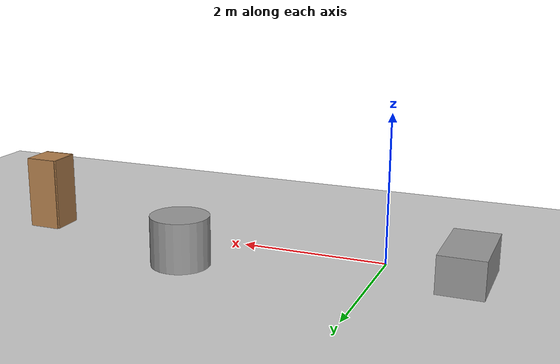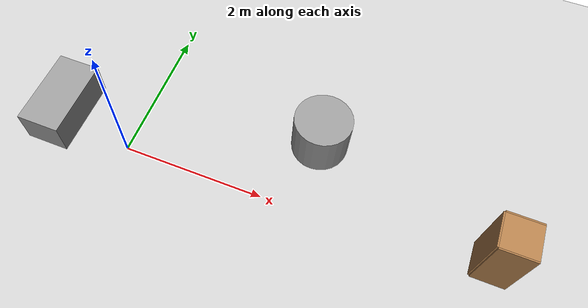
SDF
<sdf version="1.6">
 <world name="default">
  <model name="ground_plane">
   <static>1</static>
   <link name="link">
    <collision name="collision">
     <geometry><plane><normal>0 0 1</normal><size>100 100</size></plane></geometry>
     <surface>
      <contact><collide_bitmask>65535</collide_bitmask></contact>
      <friction><ode><mu>100</mu><mu2>50</mu2></ode></friction>
     </surface>
    </collision>
    <visual name="visual">
     <cast_shadows>0</cast_shadows>
     <geometry><plane><normal>0 0 1</normal><size>100 100</size></plane></geometry>
     <material>
      <script><uri>file://media/materials/scripts/gazebo.material</uri><name>Gazebo/Grey</name></script>
     </material>
    </visual>
   </link>
  </model>
  <model name="cabinet">
   <static>1</static>
   <link name="cabinet_bottom_plate">
    <inertial>
     <pose>0 0 -1 0 -0 0</pose>
     <inertia><ixx>2.05</ixx><ixy>0</ixy><ixz>0</ixz><iyy>2.05</iyy><iyz>0</iyz><izz>2.05</izz></inertia>
     <mass>25</mass>
    </inertial>
    <collision name="cabinet_bottom_plate_geom">
     <pose>0 0 0.01 0 -0 0</pose>
     <geometry><box><size>0.45 0.45 0.02</size></box></geometry>
    </collision>
    <visual name="cabinet_bottom_plate_geom_visual">
     <pose>0 0 0.01 0 -0 0</pose>
     <geometry><box><size>0.45 0.45 0.02</size></box></geometry>
     <material>
      <script><uri>file://media/materials/scripts/gazebo.material</uri><name>Gazebo/Wood</name></script>
     </material>
    </visual>
    <collision name="cabinet_bottom_plate_geom_cabinet_back_plate">
     <pose>0.235 0 0.51 0 -0 0</pose>
     <geometry><box><size>0.02 0.45 1.02</size></box></geometry>
    </collision>
    <visual name="cabinet_bottom_plate_geom_cabinet_back_plate_visual">
     <pose>0.235 0 0.51 0 -0 0</pose>
     <geometry><box><size>0.02 0.45 1.02</size></box></geometry>
     <material>
      <script><uri>file://media/materials/scripts/gazebo.material</uri><name>Gazebo/Wood</name></script>
     </material>
    </visual>
    <collision name="cabinet_bottom_plate_geom_cabinet_left_plate">
     <pose>0 0.235 0.51 0 -0 0</pose>
     <geometry><box><size>0.45 0.02 1.02</size></box></geometry>
    </collision>
    <visual name="cabinet_bottom_plate_geom_cabinet_left_plate_visual">
     <pose>0 0.235 0.51 0 -0 0</pose>
     <geometry><box><size>0.45 0.02 1.02</size></box></geometry>
     <material>
      <script><uri>file://media/materials/scripts/gazebo.material</uri><name>Gazebo/Wood</name></script>
     </material>
    </visual>
    <collision name="cabinet_bottom_plate_geom_cabinet_middle_plate">
     <pose>0 0 0.51 0 -0 0</pose>
     <geometry><box><size>0.45 0.45 0.02</size></box></geometry>
    </collision>
    <visual name="cabinet_bottom_plate_geom_cabinet_middle_plate_visual">
     <pose>0 0 0.51 0 -0 0</pose>
     <geometry><box><size>0.45 0.45 0.02</size></box></geometry>
     <material>
      <script><uri>file://media/materials/scripts/gazebo.material</uri><name>Gazebo/Wood</name></script>
     </material>
    </visual>
    <collision name="cabinet_bottom_plate_geom_cabinet_right_plate">
     <pose>0 -0.235 0.51 0 -0 0</pose>
     <geometry><box><size>0.45 0.02 1.02</size></box></geometry>
    </collision>
    <visual name="cabinet_bottom_plate_geom_cabinet_right_plate_visual">
     <pose>0 -0.235 0.51 0 -0 0</pose>
     <geometry><box><size>0.45 0.02 1.02</size></box></geometry>
     <material>
      <script><uri>file://media/materials/scripts/gazebo.material</uri><name>Gazebo/Wood</name></script>
     </material>
    </visual>
    <collision name="cabinet_bottom_plate_geom_cabinet_top_plate">
     <pose>0 0 1.01 0 -0 0</pose>
     <geometry><box><size>0.45 0.45 0.02</size></box></geometry>
    </collision>
    <visual name="cabinet_bottom_plate_geom_cabinet_top_plate_visual">
     <pose>0 0 1.01 0 -0 0</pose>
     <geometry><box><size>0.45 0.45 0.02</size></box></geometry>
     <material>
      <script><uri>file://media/materials/scripts/gazebo.material</uri><name>Gazebo/Wood</name></script>
     </material>
    </visual>
   </link>
   <pose>5.02801 0.200991 0 0 -0 3.13901</pose>
  </model>
  <model name="unit_box_0">
   <pose>-1.09175 0.23061 0.250166 0 -0 0</pose>
   <link name="link">
    <inertial>
     <mass>1</mass>
     <inertia>
      <ixx>0.166667</ixx>
      <ixy>0</ixy>
      <ixz>0</ixz>
      <iyy>0.166667</iyy>
      <iyz>0</iyz>
      <izz>0.166667</izz>
     </inertia>
    </inertial>
    <collision name="collision"><geometry><box><size>0.605855 1.11056 0.500333</size></box></geometry></collision>
    <visual name="visual">
     <geometry><box><size>0.605855 1.11056 0.500333</size></box></geometry>
     <material>
      <script><name>Gazebo/Grey</name><uri>file://media/materials/scripts/gazebo.material</uri></script>
     </material>
    </visual>
   </link>
  </model>
  <model name="unit_cylinder_0_0">
   <pose>2.47485 1.04744 0.33503 0 -0 0</pose>
   <link name="link">
    <inertial>
     <mass>1</mass>
     <inertia><ixx>0.145833</ixx><ixy>0</ixy><ixz>0</ixz><iyy>0.145833</iyy><iyz>0</iyz><izz>0.125</izz></inertia>
    </inertial>
    <collision name="collision">
     <geometry><cylinder><radius>0.394281</radius><length>0.67006</length></cylinder></geometry>
    </collision>
    <visual name="visual">
     <geometry><cylinder><radius>0.394281</radius><length>0.67006</length></cylinder></geometry>
     <material>
      <script><name>Gazebo/Grey</name><uri>file://media/materials/scripts/gazebo.material</uri></script>
     </material>
    </visual>
   </link>
  </model>
 </world>
</sdf>
